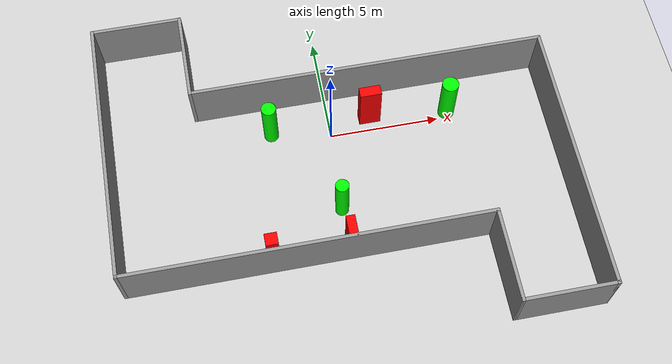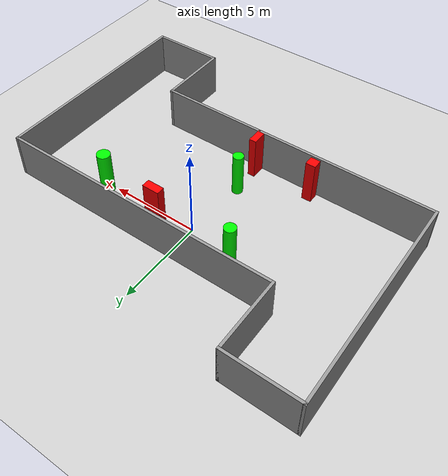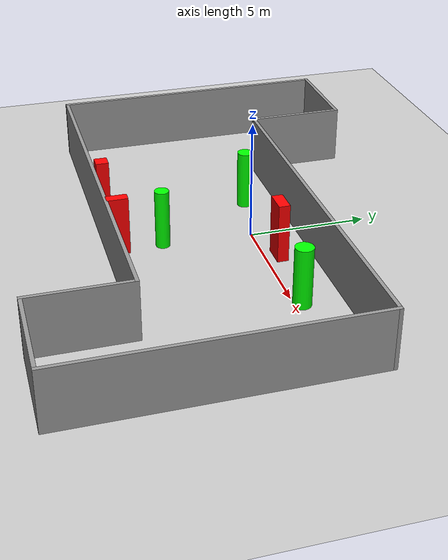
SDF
<sdf version="1.7">
 <world name="default">
  <light name="sun" type="directional">
   <pose>0 0 10 0 -0 0</pose>
   <diffuse>0.8 0.8 0.8 1</diffuse>
   <specular>0.2 0.2 0.2 1</specular>
   <attenuation>
    <range>1000</range>
    <constant>0.9</constant>
    <linear>0.01</linear>
    <quadratic>0.001</quadratic>
   </attenuation>
   <direction>-0.5 0.1 -0.9</direction>
   <spot><inner_angle>0</inner_angle><outer_angle>0</outer_angle><falloff>0</falloff></spot>
  </light>
  <model name="ground_plane">
   <static>1</static>
   <link name="link">
    <collision name="collision">
     <geometry><plane><normal>0 0 1</normal><size>100 100</size></plane></geometry>
     <surface>
      <contact><collide_bitmask>65535</collide_bitmask></contact>
      <friction><ode><mu>100</mu><mu2>50</mu2></ode></friction>
     </surface>
    </collision>
    <visual name="visual">
     <cast_shadows>0</cast_shadows>
     <geometry><plane><normal>0 0 1</normal><size>100 100</size></plane></geometry>
     <material>
      <script><uri>file://media/materials/scripts/gazebo.material</uri><name>Gazebo/Grey</name></script>
     </material>
    </visual>
   </link>
  </model>
  <gravity>0 0 -9.8</gravity>
  <magnetic_field>6e-06 2.3e-05 -4.2e-05</magnetic_field>
  <atmosphere type="adiabatic"/>
  <physics type="ode">
   <max_step_size>0.001</max_step_size>
   <real_time_factor>1</real_time_factor>
   <real_time_update_rate>1000</real_time_update_rate>
  </physics>
  <scene><ambient>0.4 0.4 0.4 1</ambient><background>0.7 0.7 0.7 1</background><shadows>1</shadows></scene>
  <spherical_coordinates>
   <surface_model>EARTH_WGS84</surface_model>
   <latitude_deg>0</latitude_deg>
   <longitude_deg>0</longitude_deg>
   <elevation>0</elevation>
   <heading_deg>0</heading_deg>
  </spherical_coordinates>
  <model name="my_base_walls">
   <link name="Wall_13">
    <collision name="Wall_13_Collision">
     <geometry><box><size>12.15 0.15 2.5</size></box></geometry>
     <pose>0 0 1.25 0 -0 0</pose>
    </collision>
    <visual name="Wall_13_Visual">
     <pose>0 0 1.25 0 -0 0</pose>
     <geometry><box><size>12.15 0.15 2.5</size></box></geometry>
     <material>
      <script><uri>file://media/materials/scripts/gazebo.material</uri><name>Gazebo/Grey</name></script>
      <ambient>1 1 1 1</ambient>
     </material>
     <meta><layer>0</layer></meta>
    </visual>
    <pose>10 -2 0 0 -0 1.5708</pose>
   </link>
   <link name="Wall_15">
    <collision name="Wall_15_Collision">
     <geometry><box><size>16.15 0.15 2.5</size></box></geometry>
     <pose>0 0 1.25 0 -0 0</pose>
    </collision>
    <visual name="Wall_15_Visual">
     <pose>0 0 1.25 0 -0 0</pose>
     <geometry><box><size>16.15 0.15 2.5</size></box></geometry>
     <material>
      <script><uri>file://media/materials/scripts/gazebo.material</uri><name>Gazebo/Grey</name></script>
      <ambient>1 1 1 1</ambient>
     </material>
     <meta><layer>0</layer></meta>
    </visual>
    <pose>2 4 0 0 -0 3.14159</pose>
   </link>
   <link name="Wall_17">
    <collision name="Wall_17_Collision">
     <geometry><box><size>4.15 0.15 2.5</size></box></geometry>
     <pose>0 0 1.25 0 -0 0</pose>
    </collision>
    <visual name="Wall_17_Visual">
     <pose>0 0 1.25 0 -0 0</pose>
     <geometry><box><size>4.15 0.15 2.5</size></box></geometry>
     <material>
      <script><uri>file://media/materials/scripts/gazebo.material</uri><name>Gazebo/Grey</name></script>
      <ambient>1 1 1 1</ambient>
     </material>
     <meta><layer>0</layer></meta>
    </visual>
    <pose>6 -6 0 0 -0 -1.5708</pose>
   </link>
   <link name="Wall_19">
    <collision name="Wall_19_Collision">
     <geometry><box><size>12.15 0.15 2.5</size></box></geometry>
     <pose>0 0 1.25 0 -0 0</pose>
    </collision>
    <visual name="Wall_19_Visual">
     <pose>0 0 1.25 0 -0 0</pose>
     <geometry><box><size>12.15 0.15 2.5</size></box></geometry>
     <material>
      <script><uri>file://media/materials/scripts/gazebo.material</uri><name>Gazebo/Grey</name></script>
      <ambient>1 1 1 1</ambient>
     </material>
     <meta><layer>0</layer></meta>
    </visual>
    <pose>-10 2 0 0 -0 1.5708</pose>
   </link>
   <link name="Wall_21">
    <collision name="Wall_21_Collision">
     <geometry><box><size>4.15 0.15 2.5</size></box></geometry>
     <pose>0 0 1.25 0 -0 0</pose>
    </collision>
    <visual name="Wall_21_Visual">
     <pose>0 0 1.25 0 -0 0</pose>
     <geometry><box><size>4.15 0.15 2.5</size></box></geometry>
     <material>
      <script><uri>file://media/materials/scripts/gazebo.material</uri><name>Gazebo/Grey</name></script>
      <ambient>1 1 1 1</ambient>
     </material>
     <meta><layer>0</layer></meta>
    </visual>
    <pose>-8 8 0 0 -0 0</pose>
   </link>
   <link name="Wall_23">
    <collision name="Wall_23_Collision">
     <geometry><box><size>4.15 0.15 2.5</size></box></geometry>
     <pose>0 0 1.25 0 -0 0</pose>
    </collision>
    <visual name="Wall_23_Visual">
     <pose>0 0 1.25 0 -0 0</pose>
     <geometry><box><size>4.15 0.15 2.5</size></box></geometry>
     <material>
      <script><uri>file://media/materials/scripts/gazebo.material</uri><name>Gazebo/Grey</name></script>
      <ambient>1 1 1 1</ambient>
     </material>
     <meta><layer>0</layer></meta>
    </visual>
    <pose>-6 6 0 0 -0 -1.5708</pose>
   </link>
   <link name="Wall_25">
    <collision name="Wall_25_Collision">
     <geometry><box><size>4.15 0.15 2.5</size></box></geometry>
     <pose>0 0 1.25 0 -0 0</pose>
    </collision>
    <visual name="Wall_25_Visual">
     <pose>0 0 1.25 0 -0 0</pose>
     <geometry><box><size>4.15 0.15 2.5</size></box></geometry>
     <material>
      <script><uri>file://media/materials/scripts/gazebo.material</uri><name>Gazebo/Grey</name></script>
      <ambient>1 1 1 1</ambient>
     </material>
     <meta><layer>0</layer></meta>
    </visual>
    <pose>8 -8 0 0 -0 0</pose>
   </link>
   <link name="Wall_9">
    <collision name="Wall_9_Collision">
     <geometry><box><size>16.15 0.15 2.5</size></box></geometry>
     <pose>0 0 1.25 0 -0 0</pose>
    </collision>
    <visual name="Wall_9_Visual">
     <pose>0 0 1.25 0 -0 0</pose>
     <geometry><box><size>16.15 0.15 2.5</size></box></geometry>
     <material>
      <script><uri>file://media/materials/scripts/gazebo.material</uri><name>Gazebo/Grey</name></script>
      <ambient>1 1 1 1</ambient>
     </material>
     <meta><layer>0</layer></meta>
    </visual>
    <pose>-2 -4 0 0 -0 3.14159</pose>
   </link>
   <static>1</static>
   <pose>-0 -2 0 0 -0 0</pose>
  </model>
  <model name="cylinder1">
   <static>1</static>
   <link name="link">
    <inertial>
     <mass>1</mass>
     <inertia><ixx>0.5</ixx><ixy>0</ixy><ixz>0</ixz><iyy>0.5</iyy><iyz>0</iyz><izz>1</izz></inertia>
    </inertial>
    <collision name="collision">
     <geometry><cylinder><radius>0.2985340765029312</radius><length>2.5</length></cylinder></geometry>
    </collision>
    <visual name="visual">
     <geometry><cylinder><radius>0.2985340765029312</radius><length>2.5</length></cylinder></geometry>
     <material>
      <ambient>0 1 0 1</ambient>
      <diffuse>0 1 0 1</diffuse>
      <specular>0.1 0.1 0.1 1</specular>
      <emissive>0 0 0 0</emissive>
     </material>
    </visual>
   </link>
   <pose>-0.20023813260442225 -3.702613236493181 1.25 0 0 0</pose>
  </model>
  <model name="cylinder2">
   <static>1</static>
   <link name="link">
    <inertial>
     <mass>1</mass>
     <inertia><ixx>0.5</ixx><ixy>0</ixy><ixz>0</ixz><iyy>0.5</iyy><iyz>0</iyz><izz>1</izz></inertia>
    </inertial>
    <collision name="collision">
     <geometry><cylinder><radius>0.3283219054491352</radius><length>2.5</length></cylinder></geometry>
    </collision>
    <visual name="visual">
     <geometry><cylinder><radius>0.3283219054491352</radius><length>2.5</length></cylinder></geometry>
     <material>
      <ambient>0 1 0 1</ambient>
      <diffuse>0 1 0 1</diffuse>
      <specular>0.1 0.1 0.1 1</specular>
      <emissive>0 0 0 0</emissive>
     </material>
    </visual>
   </link>
   <pose>-2.6970585215695757 0.5526978868374268 1.25 0 0 0</pose>
  </model>
  <model name="cylinder3">
   <static>1</static>
   <link name="link">
    <inertial>
     <mass>1</mass>
     <inertia><ixx>0.5</ixx><ixy>0</ixy><ixz>0</ixz><iyy>0.5</iyy><iyz>0</iyz><izz>1</izz></inertia>
    </inertial>
    <collision name="collision">
     <geometry><cylinder><radius>0.37200038357295157</radius><length>2.5</length></cylinder></geometry>
    </collision>
    <visual name="visual">
     <geometry><cylinder><radius>0.37200038357295157</radius><length>2.5</length></cylinder></geometry>
     <material>
      <ambient>0 1 0 1</ambient>
      <diffuse>0 1 0 1</diffuse>
      <specular>0.1 0.1 0.1 1</specular>
      <emissive>0 0 0 0</emissive>
     </material>
    </visual>
   </link>
   <pose>5.473040389609864 0.2922924278414678 1.25 0 0 0</pose>
  </model>
  <model name="box1">
   <static>1</static>
   <link name="link">
    <inertial>
     <mass>1</mass>
     <inertia><ixx>0.083</ixx><ixy>0</ixy><ixz>0</ixz><iyy>0.083</iyy><iyz>0</iyz><izz>0.083</izz></inertia>
    </inertial>
    <collision name="collision">
     <geometry><box><size>0.5444718859479525 0.5432415785861878 2.5</size></box></geometry>
    </collision>
    <visual name="visual">
     <geometry><box><size>0.5444718859479525 0.5432415785861878 2.5</size></box></geometry>
     <material>
      <ambient>1 0 0 1</ambient>
      <diffuse>1 0 0 1</diffuse>
      <specular>0.1 0.1 0.1 1</specular>
      <emissive>0 0 0 0</emissive>
     </material>
    </visual>
    <sensor name="my_contact" type="contact">
     <contact><collision>box_collision</collision><topic>__default_topic__</topic></contact>
    </sensor>
   </link>
   <pose>-3.536586015334955 -5.544768711441482 1.25 0 0 0</pose>
  </model>
  <model name="box2">
   <static>1</static>
   <link name="link">
    <inertial>
     <mass>1</mass>
     <inertia><ixx>0.083</ixx><ixy>0</ixy><ixz>0</ixz><iyy>0.083</iyy><iyz>0</iyz><izz>0.083</izz></inertia>
    </inertial>
    <collision name="collision">
     <geometry><box><size>0.964178739688347 0.4650132036532168 2.5</size></box></geometry>
    </collision>
    <visual name="visual">
     <geometry><box><size>0.964178739688347 0.4650132036532168 2.5</size></box></geometry>
     <material>
      <ambient>1 0 0 1</ambient>
      <diffuse>1 0 0 1</diffuse>
      <specular>0.1 0.1 0.1 1</specular>
      <emissive>0 0 0 0</emissive>
     </material>
    </visual>
    <sensor name="my_contact" type="contact">
     <contact><collision>box_collision</collision><topic>__default_topic__</topic></contact>
    </sensor>
   </link>
   <pose>1.8844920207172713 0.6074770480052791 1.25 0 0 0</pose>
  </model>
  <model name="box3">
   <static>1</static>
   <link name="link">
    <inertial>
     <mass>1</mass>
     <inertia><ixx>0.083</ixx><ixy>0</ixy><ixz>0</ixz><iyy>0.083</iyy><iyz>0</iyz><izz>0.083</izz></inertia>
    </inertial>
    <collision name="collision">
     <geometry><box><size>0.39883179243379696 0.9166357092989235 2.5</size></box></geometry>
    </collision>
    <visual name="visual">
     <geometry><box><size>0.39883179243379696 0.9166357092989235 2.5</size></box></geometry>
     <material>
      <ambient>1 0 0 1</ambient>
      <diffuse>1 0 0 1</diffuse>
      <specular>0.1 0.1 0.1 1</specular>
      <emissive>0 0 0 0</emissive>
     </material>
    </visual>
    <sensor name="my_contact" type="contact">
     <contact><collision>box_collision</collision><topic>__default_topic__</topic></contact>
    </sensor>
   </link>
   <pose>-0.12859643391243925 -5.5630670403344125 1.25 0 0 0</pose>
  </model>
 </world>
</sdf>
